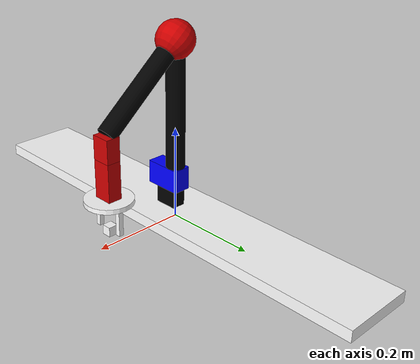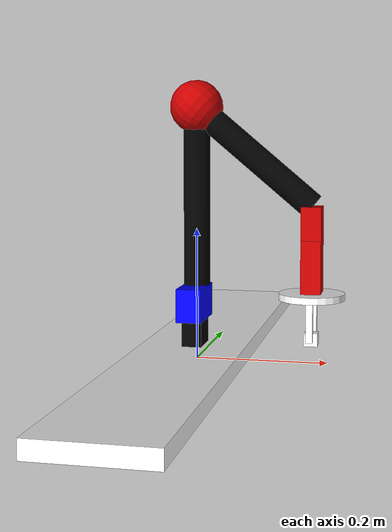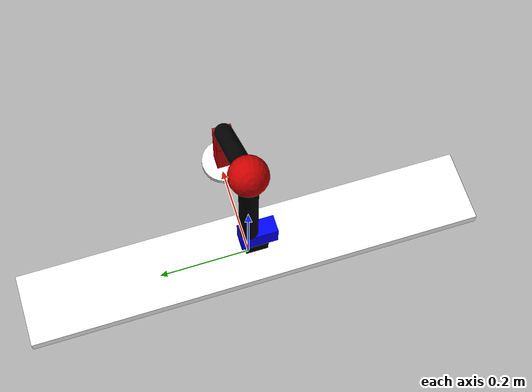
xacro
<?xml version="1.0"?>

<robot name="robotic_arm" xmlns:xacro="http://www.ros.org/wiki/xacro">

<!-- Include materials -->

    <material name="Blue">
        <color rgba="0.0 0.0 1.0 1.0"/>
    </material>

    <material name="Yellow">
        <color rgba="1.0 1.0 0.0 1.0"/>
    </material>

    <material name="Black">
        <color rgba="0.0 0.0 0.0 1.0"/>
    </material>

    <material name="Red">
        <color rgba="0.8 0.0 0.0 1.0"/>
    </material>

    <material name="Green">
        <color rgba="0 0.5 0 1.0"/>
    </material>

    <material name="White">
        <color rgba="1.0 1.0 1.0 1.0"/>
    </material>

  <!-- Shoulder yaw link properties -->
  <property name="shoulder_yaw_len" value="0.27" />

  <!-- Elbow roll link properties -->
  <property name="elbow_roll_len" value="0.23" />

  <property name="deg_to_rad" value="0.01745329251994329577"/>

  <!-- Constants -->
  <property name="M_SCALE" value="0.001 0.001 0.001"/>
  <property name="M_PI" value="3.14159"/>

<xacro:macro name="inertial_matrix" params="mass">
      <inertial>
      	<mass value="${mass}" />
        <inertia ixx="1.0" ixy="0.0" ixz="0.0" iyy="0.5" iyz="0.0" izz="1.0" />
      </inertial>
   </xacro:macro>

<xacro:macro name="transmission_block" params="joint_name">
	  <transmission name="tran1">
	    <type>transmission_interface/SimpleTransmission</type>
	    <joint name="${joint_name}">
	      <hardwareInterface>PositionJointInterface</hardwareInterface>
	    </joint>
	    <actuator name="motor1">
	      <hardwareInterface>PositionJointInterface</hardwareInterface>
	      <mechanicalReduction>1</mechanicalReduction>
	    </actuator>
	  </transmission>
   </xacro:macro>

  <!-- BOTTOM LINK -->
  <link name="bottom_link">

	    <visual>
	      <origin xyz="0 0 0.0125" rpy="0 0 0" />
	      <geometry>

		       <box size="0.16 1 0.025" />

	      </geometry>
	      <material name="White" />
	    </visual>

	    <collision>
	      <origin xyz="0 0 0.0125" rpy="0 0 0" />
	      <geometry>

		       <box size="0.16 1 0.025" />

	      </geometry>
	      </collision>>
           <xacro:inertial_matrix mass="100"/>
  </link>

  <gazebo reference="bottom_link">
    		<material>Gazebo/White</material>
  </gazebo>

<joint name="bottom_joint" type="fixed">
	    <parent link="bottom_link"/>
	    <child link="base_link"/>
	    <origin xyz="0 0 0.025" rpy="0 0 0" />
  </joint>

<!-- BASE LINK -->
<link name="base_link">

	    <visual>
	      <origin xyz="0 -0.015 0.02" rpy="0 0 0" />
	      <geometry>

		       <box size="0.03 .05 0.04" />

	      </geometry>
	      <material name="Black" />
	    </visual>

	    <collision>
	      <origin xyz="0 -0.015 0.02" rpy="0 0 0" />
	      <geometry>

		       <box size="0.03 0.05 0.04" />

	      </geometry>
	      </collision>>
           <xacro:inertial_matrix mass="1"/>
  </link>

  <gazebo reference="base_link">
    		<material>Gazebo/Black</material>
  </gazebo>

<joint name="shoulder_pan_joint" type="revolute">
	    <parent link="base_link"/>
	    <child link="shoulder_pan_link"/>
	    <origin xyz="0 0 0.04" rpy="0 0 0" />
	    <axis xyz="0 0 1" />
	    <limit effort="300" velocity="1" lower="-3.4" upper="1.82"/>
	    <dynamics damping="50" friction="1"/>
  </joint>

<!-- SHOULDER PAN LINK -->
  <link name="shoulder_pan_link" >
	    <visual>
	      <origin xyz="0 -0.02 0.025" rpy="0 0 0" />
	      <geometry>
		    <box size="0.038 0.08 0.05"/>
	      </geometry>
	      <material name="Blue" />
	    </visual>
	    <collision>
	      <origin xyz="0 -0.02 0.025" rpy="0 0 0" />
	      <geometry>
		    <box size="0.038 0.08 0.05"/>
	      </geometry>
	    </collision>
         <xacro:inertial_matrix mass="1"/>
  </link>
  <gazebo reference="shoulder_pan_link">
    		<material>Gazebo/Blue</material>
  </gazebo>

<joint name="shoulder_pitch_joint" type="revolute">
	    <parent link="shoulder_pan_link"/>
	    <child link="shoulder_pitch_link"/>
	    <origin xyz="0 0 0.05" rpy="0 0 0" />
	    <axis xyz="0 1 0" />
	    <limit effort="300" velocity="1" lower="-0.52" upper="0.52" />
	    <dynamics damping="50" friction="1"/>
  </joint>

  <!-- SHOULDER PITCH LINK -->
  <link name="shoulder_pitch_link" >

	    <visual>
	      <origin xyz="0 0 0" rpy="0 0 0" />
	      <geometry>
		    <box size="0 0 0"/>
	      </geometry>
	      <material name="Blue" />
	    </visual>
	    <collision>
	      <origin xyz="0 0 0" rpy="0 0 0" />
	      <geometry>
		    <box size="0 0 0"/>
	      </geometry>
	    </collision>
         <xacro:inertial_matrix mass="1"/>
  </link>

  <gazebo reference="shoulder_pitch_link">
    		<material>Gazebo/Blue</material>
  </gazebo>

<joint name="shoulder_yaw_joint" type="revolute">
	    <parent link="shoulder_pitch_link"/>
	    <child link="shoulder_yaw_link"/>
	    <origin xyz="0 0 0" rpy="0 0 0" />
	    <axis xyz="1 0 0" />
	    <limit effort="300" velocity="1" lower="-0.5" upper="0.5" />
	    <dynamics damping="50" friction="1"/>
  </joint>

  <!-- SHOULDER YAW LINK -->
  <link name="shoulder_yaw_link" >

	    <visual>
	      <origin xyz="0 0 ${shoulder_yaw_len/2}" rpy="0 0 0" />
	      <geometry>
		    <cylinder radius="0.02" length="${shoulder_yaw_len}"/>
	      </geometry>
	      <material name="Black" />
	    </visual>
	    <collision>
	      <origin xyz="0 0 ${shoulder_yaw_len/2}" rpy="0 0 0" />
	      <geometry>
		    <cylinder radius="0.02" length="${shoulder_yaw_len}"/>
	      </geometry>
	    </collision>
         <xacro:inertial_matrix mass="1"/>
  </link>

  <gazebo reference="shoulder_yaw_link">
    		<material>Gazebo/Black</material>
  </gazebo>
<joint name="elbow_pitch_joint" type="revolute">
	    <parent link="shoulder_yaw_link"/>
	    <child link="elbow_pitch_link"/>
	    <origin xyz="0 0 ${shoulder_yaw_len}" rpy="0 2.27 0" />
	    <axis xyz="0 1 0" />
	    <limit effort="300" velocity="1" lower="-2.27" upper="0" />
	    <dynamics damping="50" friction="1"/>
  </joint>

  <!-- ELBOW PITCH LINK -->
  <link name="elbow_pitch_link" >

	    <visual>
	      <origin xyz="0 0 0" rpy="0 0 0" />
	      <geometry>
		    <sphere radius="0.04"/>
	      </geometry>
	      <material name="Red" />
	    </visual>
	    <collision>
	      <origin xyz="0 0 0" rpy="0 0 0" />
	      <geometry>
		    <sphere radius="0.04"/>
	      </geometry>
	    </collision>
         <xacro:inertial_matrix mass="1"/>
  </link>

  <gazebo reference="elbow_pitch_link">
    		<material>Gazebo/Red</material>
  </gazebo>
<joint name="elbow_roll_joint" type="revolute">
	    <parent link="elbow_pitch_link"/>
	    <child link="elbow_roll_link"/>
	    <origin xyz="0 0 0" rpy="0 0 0" />
	    <axis xyz="0 0 1" />
	    <limit effort="300" velocity="1" lower="-2.62" upper="2.62" />
	    <dynamics damping="50" friction="1"/>
  </joint>

  <!-- ELBOW ROLL LINK -->
  <link name="elbow_roll_link" >

	    <visual>
	      <origin xyz="0 0 ${elbow_roll_len/2}" rpy="0 0 0" />
	      <geometry>
		    <cylinder radius="0.02" length="${elbow_roll_len}"/>
	      </geometry>
	      <material name="Black" />
	    </visual>
	    <collision>
	      <origin xyz="0 0 ${elbow_roll_len/2}" rpy="0 0 0" />
	      <geometry>
		    <cylinder radius="0.02" length="${elbow_roll_len}"/>
	      </geometry>
	    </collision>
         <xacro:inertial_matrix mass="1"/>
  </link>

  <gazebo reference="elbow_roll_link">
    		<material>Gazebo/Black</material>
  </gazebo>
<joint name="wrist_pitch_joint" type="revolute">
	    <parent link="elbow_roll_link"/>
	    <child link="wrist_pitch_link"/>
	    <origin xyz="0 0 ${elbow_roll_len}" rpy="0 0.87 0" />
	    <axis xyz="0 1 0" />
	    <limit effort="300" velocity="1" lower="-2.44" upper="0.7" />
	    <dynamics damping="50" friction="1"/>
  </joint>

  <!-- WRIST PITCH LINK -->
  <link name="wrist_pitch_link" >

	    <visual>
	      <origin xyz="0 0 0.025" rpy="0 0 0" />
	      <geometry>
		    <box size="0.03 0.04 0.05"/>
	      </geometry>
	      <material name="Red" />
	    </visual>
	    <collision>
	      <origin xyz="0 0 0.025" rpy="0 0 0" />
	      <geometry>
		    <box size="0.03 0.04 0.05"/>
	      </geometry>
	    </collision>
         <xacro:inertial_matrix mass="1"/>
  </link>

  <gazebo reference="wrist_pitch_link">
    		<material>Gazebo/Red</material>
  </gazebo>
<joint name="wrist_joint" type="fixed">
	    <parent link="wrist_pitch_link"/>
	    <child link="wrist_link"/>
	    <origin xyz="0 0 0.05" rpy="0 0 0" />
  </joint>

  <!-- WRIST LINK -->
  <link name="wrist_link" >

	    <visual>
	      <origin xyz="0 0 0.04" rpy="0 0 0" />
	      <geometry>
		    <box size="0.03 0.04 0.08"/>
	      </geometry>
	      <material name="Red" />
	    </visual>
	    <collision>
	      <origin xyz="0 0 0.025" rpy="0 0 0" />
	      <geometry>
		    <box size="0.03 0.04 0.05"/>
	      </geometry>
	    </collision>
         <xacro:inertial_matrix mass="1"/>
  </link>

  <gazebo reference="wrist_link">
    		<material>Gazebo/Red</material>
  </gazebo>
<joint name="grabber_joint" type="fixed">
	    <parent link="wrist_link"/>
	    <child link="grabber_link"/>
	    <origin xyz="0 0 0.08" rpy="0 0 0" />
  </joint>

  <!-- GRABBER LINK -->
  <link name="grabber_link" >

	    <visual>
	      <origin xyz="0 0 0.005" rpy="0 0 0" />
	      <geometry>
		    <cylinder radius="0.05" length="0.01"/>
	      </geometry>
	      <material name="White" />
	    </visual>
	    <collision>
	      <origin xyz="0 0 0.005" rpy="0 0 0" />
	      <geometry>
		    <cylinder radius="0.03" length="0.01"/>
	      </geometry>
	    </collision>
         <xacro:inertial_matrix mass="1"/>
  </link>

  <gazebo reference="grabber_link">
    		<material>Gazebo/White</material>
  </gazebo>
<joint name="finger_joint1" type="fixed">
    <parent link="grabber_link"/>
    <child link="finger_link1"/>
    <origin xyz="0.0 0 0.01" />
  </joint>

<!-- FINGER LINK 1-->
  <link name="finger_link1">

     <visual>
      <origin xyz="0 -0.03 0.03"/>
      <geometry>

           <box size="0.01 0.01 0.06" />

      </geometry>
      <material name="White" />
    </visual>
         <xacro:inertial_matrix mass="1"/>
  </link>

  <gazebo reference="finger_link1">
    <material>Gazebo/White</material>
  </gazebo>
<joint name="finger_joint2" type="fixed">
    <parent link="grabber_link"/>
    <child link="finger_link2"/>
    <origin xyz="0.0 0 0.01" />
  </joint>

<!-- FINGER LINK 2-->
  <link name="finger_link2">

     <visual>
      <origin xyz="0 0.03 0.03"/>
      <geometry>

           <box size="0.01 0.01 0.06" />

      </geometry>
      <material name="White" />
    </visual>
         <xacro:inertial_matrix mass="1"/>
  </link>

  <gazebo reference="finger_link2">
    <material>Gazebo/White</material>
  </gazebo>
<joint name="grasping_frame_joint" type="fixed">
      <parent link="grabber_link"/>
      <child link="grasping_frame"/>
      <origin xyz="0 0 0.07" rpy="0 0 0"/>
    </joint>

<!-- Grasping frame -->
    <link name="grasping_frame">

      <inertial>
        <origin xyz="0 0 0" rpy="0 0 0"/>
        <mass value="0.0001"/>
        <cuboid_inertia mass="0.0001" x="0.001" y="0.001" z="0.001"/>
        <inertia  ixx="1.0" ixy="0.0"  ixz="0.0"  iyy="100.0"  iyz="0.0"  izz="1.0" />

      </inertial>

    <visual>
      <origin xyz="0 0 0"/>
      <geometry>

          <box size="0.02 0.02 0.02" />

      </geometry>
      <material name="White" />
    </visual>
    </link>

<!-- Transmissions for ROS Control -->
<xacro:transmission_block joint_name="shoulder_pan_joint"/>
<xacro:transmission_block joint_name="shoulder_pitch_joint"/>
<xacro:transmission_block joint_name="shoulder_yaw_joint"/>
<xacro:transmission_block joint_name="elbow_pitch_joint"/>
<xacro:transmission_block joint_name="elbow_roll_joint"/>
<xacro:transmission_block joint_name="wrist_pitch_joint"/>

<!-- ros_control plugin -->
  <gazebo>
    <plugin name="gazebo_ros_control" filename="libgazebo_ros_control.so">
      <robotNamespace>/robotic_arm</robotNamespace>
    </plugin>
  </gazebo>

</robot>
